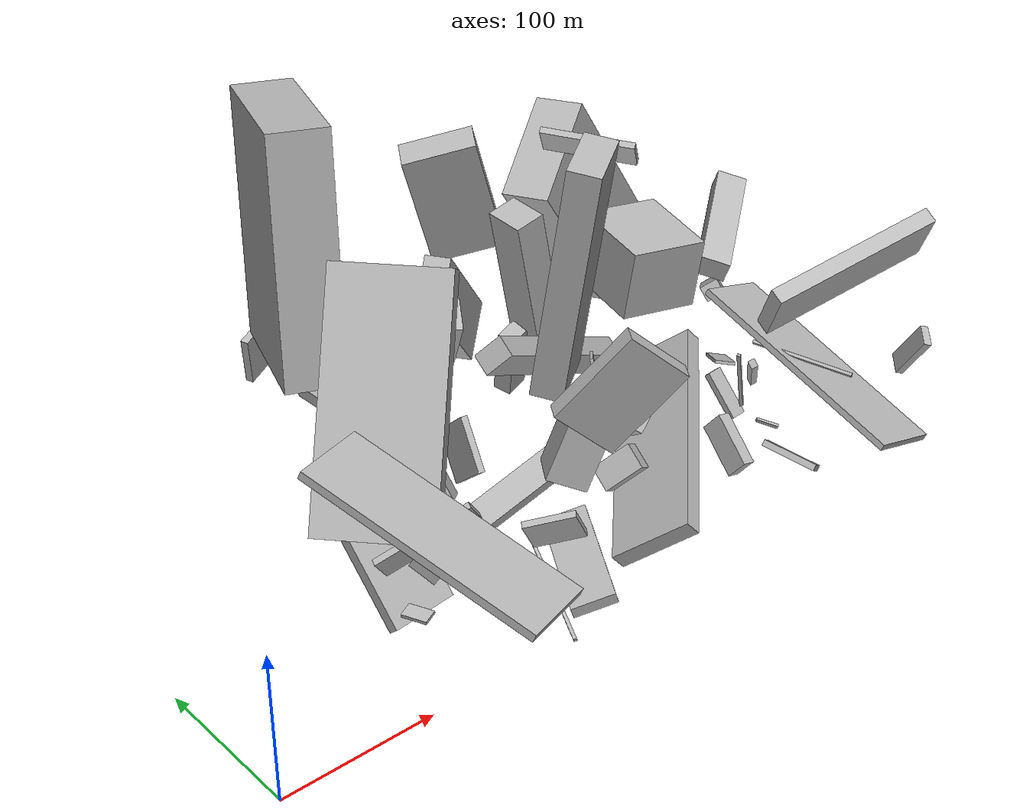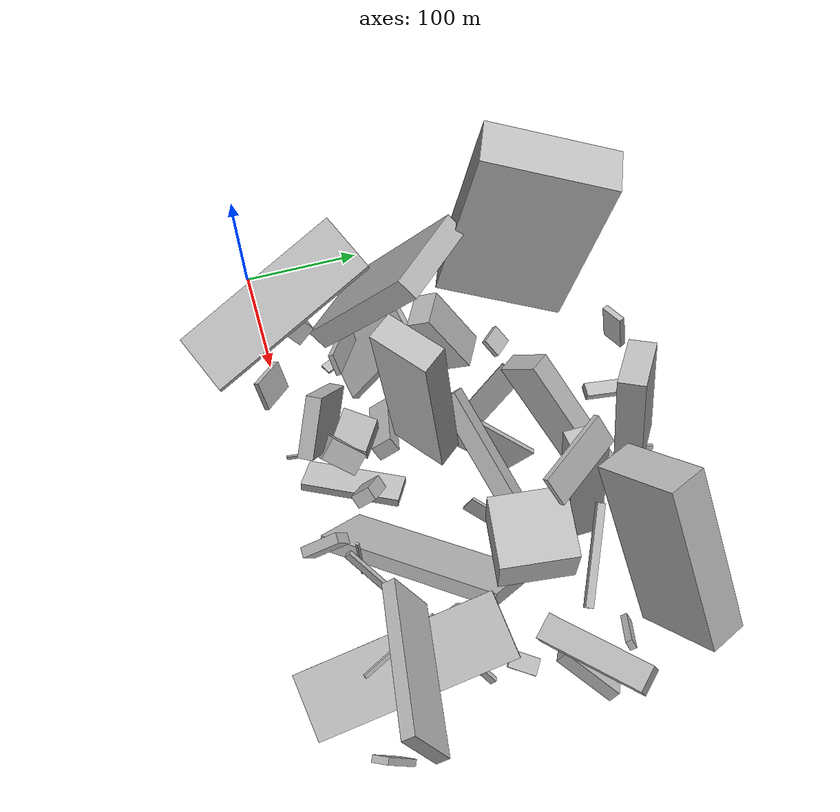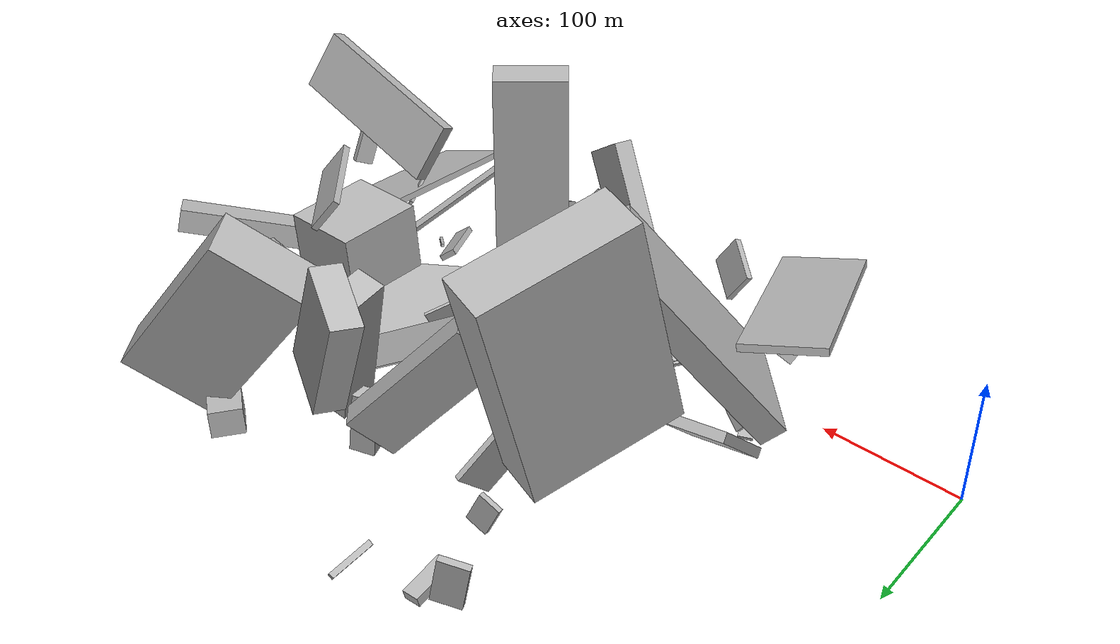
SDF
<sdf version="1.6">
 <world name="default">
  <model name="building_2">
   <static>0</static>
   <pose>440.4431010507671 38.60146053328462 60.069480428920286 -1.1927769694881696 -0.2578235203287633 1.6142492067294447</pose>
   <link name="link">
    <gravity>0</gravity>
    <pose>0 0 24.5 0 0 0</pose>
    <collision name="collision"><geometry><box><size>150 4 49</size></box></geometry></collision>
    <visual name="visual">
     <cast_shadows>0</cast_shadows>
     <geometry><box><size>150 4 49</size></box></geometry>
     <material>
      <script>
       <uri>model://HANNAS_wall/materials/scripts</uri>
       <uri>model://HANNAS_wall/materials/textures</uri>
       <name>vrc/HANNAS_wall</name>
      </script>
     </material>
    </visual>
   </link>
  </model>
  <model name="building_6">
   <static>0</static>
   <pose>388.2095057453608 76.4043435438441 40.05132889341294 1.4428762924801 -0.7577369081922626 -1.315213940994746</pose>
   <link name="link">
    <gravity>0</gravity>
    <pose>0 0 5.5 0 0 0</pose>
    <collision name="collision"><geometry><box><size>4 31 11</size></box></geometry></collision>
    <visual name="visual">
     <cast_shadows>0</cast_shadows>
     <geometry><box><size>4 31 11</size></box></geometry>
     <material>
      <script>
       <uri>model://HANNAS_wall/materials/scripts</uri>
       <uri>model://HANNAS_wall/materials/textures</uri>
       <name>vrc/HANNAS_wall</name>
      </script>
     </material>
    </visual>
   </link>
  </model>
  <model name="building_10">
   <static>0</static>
   <pose>232.27764748264298 53.23633769311051 96.22144961448575 2.7284813280096243 -1.1466738281262676 -0.2003672247697847</pose>
   <link name="link">
    <gravity>0</gravity>
    <pose>0 0 12.5 0 0 0</pose>
    <collision name="collision"><geometry><box><size>50 26 25</size></box></geometry></collision>
    <visual name="visual">
     <cast_shadows>0</cast_shadows>
     <geometry><box><size>50 26 25</size></box></geometry>
     <material>
      <script>
       <uri>model://HANNAS_wall/materials/scripts</uri>
       <uri>model://HANNAS_wall/materials/textures</uri>
       <name>vrc/HANNAS_wall</name>
      </script>
     </material>
    </visual>
   </link>
  </model>
  <model name="building_11">
   <static>0</static>
   <pose>149.7832015778629 186.83316816147635 112.1341788793621 0.20476677884110345 -0.03882666111469006 2.753556784348288</pose>
   <link name="link">
    <gravity>0</gravity>
    <pose>0 0 75.0 0 0 0</pose>
    <collision name="collision"><geometry><box><size>36 99 150</size></box></geometry></collision>
    <visual name="visual">
     <cast_shadows>0</cast_shadows>
     <geometry><box><size>36 99 150</size></box></geometry>
     <material>
      <script>
       <uri>model://HANNAS_wall/materials/scripts</uri>
       <uri>model://HANNAS_wall/materials/textures</uri>
       <name>vrc/HANNAS_wall</name>
      </script>
     </material>
    </visual>
   </link>
  </model>
  <model name="building_15">
   <static>0</static>
   <pose>219.52609646362248 64.4884611498182 48.07759273776928 -0.7598916400136252 0.8958230802810724 0.7362716197174718</pose>
   <link name="link">
    <gravity>0</gravity>
    <pose>0 0 8.5 0 0 0</pose>
    <collision name="collision"><geometry><box><size>13 59 17</size></box></geometry></collision>
    <visual name="visual">
     <cast_shadows>0</cast_shadows>
     <geometry><box><size>13 59 17</size></box></geometry>
     <material>
      <script>
       <uri>model://HANNAS_wall/materials/scripts</uri>
       <uri>model://HANNAS_wall/materials/textures</uri>
       <name>vrc/HANNAS_wall</name>
      </script>
     </material>
    </visual>
   </link>
  </model>
  <model name="building_17">
   <static>0</static>
   <pose>335.90783788194483 195.53766606975177 89.73078323857001 1.7374953841887708 -0.007283260920793814 -1.5533922045461594</pose>
   <link name="link">
    <gravity>0</gravity>
    <pose>0 0 10.0 0 0 0</pose>
    <collision name="collision"><geometry><box><size>27 102 20</size></box></geometry></collision>
    <visual name="visual">
     <cast_shadows>0</cast_shadows>
     <geometry><box><size>27 102 20</size></box></geometry>
     <material>
      <script>
       <uri>model://HANNAS_wall/materials/scripts</uri>
       <uri>model://HANNAS_wall/materials/textures</uri>
       <name>vrc/HANNAS_wall</name>
      </script>
     </material>
    </visual>
   </link>
  </model>
  <model name="building_20">
   <static>0</static>
   <pose>214.78213762172194 207.93914817287515 21.610456366089423 -2.060364451368353 -1.1821395013426674 -2.626097188958331</pose>
   <link name="link">
    <gravity>0</gravity>
    <pose>0 0 2.0 0 0 0</pose>
    <collision name="collision"><geometry><box><size>23 16 4</size></box></geometry></collision>
    <visual name="visual">
     <cast_shadows>0</cast_shadows>
     <geometry><box><size>23 16 4</size></box></geometry>
     <material>
      <script>
       <uri>model://HANNAS_wall/materials/scripts</uri>
       <uri>model://HANNAS_wall/materials/textures</uri>
       <name>vrc/HANNAS_wall</name>
      </script>
     </material>
    </visual>
   </link>
  </model>
  <model name="building_23">
   <static>0</static>
   <pose>338.70299949811437 56.00060980796596 46.621645672576314 2.2432393264583905 0.24130760410190355 -2.3062253183938997</pose>
   <link name="link">
    <gravity>0</gravity>
    <pose>0 0 27.5 0 0 0</pose>
    <collision name="collision"><geometry><box><size>150 11 55</size></box></geometry></collision>
    <visual name="visual">
     <cast_shadows>0</cast_shadows>
     <geometry><box><size>150 11 55</size></box></geometry>
     <material>
      <script>
       <uri>model://HANNAS_wall/materials/scripts</uri>
       <uri>model://HANNAS_wall/materials/textures</uri>
       <name>vrc/HANNAS_wall</name>
      </script>
     </material>
    </visual>
   </link>
  </model>
  <model name="building_27">
   <static>0</static>
   <pose>393.2907997637555 136.81611679598745 109.39895591986141 1.4267878230865503 0.03693590992971222 -1.7060419672237959</pose>
   <link name="link">
    <gravity>0</gravity>
    <pose>0 0 25.5 0 0 0</pose>
    <collision name="collision"><geometry><box><size>55 44 51</size></box></geometry></collision>
    <visual name="visual">
     <cast_shadows>0</cast_shadows>
     <geometry><box><size>55 44 51</size></box></geometry>
     <material>
      <script>
       <uri>model://HANNAS_wall/materials/scripts</uri>
       <uri>model://HANNAS_wall/materials/textures</uri>
       <name>vrc/HANNAS_wall</name>
      </script>
     </material>
    </visual>
   </link>
  </model>
  <model name="building_32">
   <static>0</static>
   <pose>400.26145545715553 237.65232030737445 28.487578933202496 0.16859323836312462 1.3529740922339082 2.580095224468473</pose>
   <link name="link">
    <gravity>0</gravity>
    <pose>0 0 13.5 0 0 0</pose>
    <collision name="collision"><geometry><box><size>18 22 27</size></box></geometry></collision>
    <visual name="visual">
     <cast_shadows>0</cast_shadows>
     <geometry><box><size>18 22 27</size></box></geometry>
     <material>
      <script>
       <uri>model://HANNAS_wall/materials/scripts</uri>
       <uri>model://HANNAS_wall/materials/textures</uri>
       <name>vrc/HANNAS_wall</name>
      </script>
     </material>
    </visual>
   </link>
  </model>
  <model name="building_33">
   <static>0</static>
   <pose>292.96228329793706 217.71010325587122 53.25038979860694 0.008983599827297436 -0.7369748713210755 0.6411146286087552</pose>
   <link name="link">
    <gravity>0</gravity>
    <pose>0 0 51.0 0 0 0</pose>
    <collision name="collision"><geometry><box><size>37 16 102</size></box></geometry></collision>
    <visual name="visual">
     <cast_shadows>0</cast_shadows>
     <geometry><box><size>37 16 102</size></box></geometry>
     <material>
      <script>
       <uri>model://HANNAS_wall/materials/scripts</uri>
       <uri>model://HANNAS_wall/materials/textures</uri>
       <name>vrc/HANNAS_wall</name>
      </script>
     </material>
    </visual>
   </link>
  </model>
  <model name="building_35">
   <static>0</static>
   <pose>112.2686175401964 64.9411013371456 72.48270909858081 -0.6241273816576757 0.0033706875729387423 -0.807209717213467</pose>
   <link name="link">
    <gravity>0</gravity>
    <pose>0 0 75.0 0 0 0</pose>
    <collision name="collision"><geometry><box><size>70 18 150</size></box></geometry></collision>
    <visual name="visual">
     <cast_shadows>0</cast_shadows>
     <geometry><box><size>70 18 150</size></box></geometry>
     <material>
      <script>
       <uri>model://HANNAS_wall/materials/scripts</uri>
       <uri>model://HANNAS_wall/materials/textures</uri>
       <name>vrc/HANNAS_wall</name>
      </script>
     </material>
    </visual>
   </link>
  </model>
  <model name="building_42">
   <static>0</static>
   <pose>230.42341458796216 130.35768904068766 43.8923229715444 -2.2987278374421627 -0.07417734554825312 -0.30571200952292893</pose>
   <link name="link">
    <gravity>0</gravity>
    <pose>0 0 33.5 0 0 0</pose>
    <collision name="collision"><geometry><box><size>4 35 67</size></box></geometry></collision>
    <visual name="visual">
     <cast_shadows>0</cast_shadows>
     <geometry><box><size>4 35 67</size></box></geometry>
     <material>
      <script>
       <uri>model://HANNAS_wall/materials/scripts</uri>
       <uri>model://HANNAS_wall/materials/textures</uri>
       <name>vrc/HANNAS_wall</name>
      </script>
     </material>
    </visual>
   </link>
  </model>
  <model name="building_50">
   <static>0</static>
   <pose>147.36741980478376 59.81347581720005 55.495108072719574 0.3999021118568432 -0.48585957737385504 -0.4306829690289839</pose>
   <link name="link">
    <gravity>0</gravity>
    <pose>0 0 9.0 0 0 0</pose>
    <collision name="collision"><geometry><box><size>62 4 18</size></box></geometry></collision>
    <visual name="visual">
     <cast_shadows>0</cast_shadows>
     <geometry><box><size>62 4 18</size></box></geometry>
     <material>
      <script>
       <uri>model://HANNAS_wall/materials/scripts</uri>
       <uri>model://HANNAS_wall/materials/textures</uri>
       <name>vrc/HANNAS_wall</name>
      </script>
     </material>
    </visual>
   </link>
  </model>
  <model name="building_53">
   <static>0</static>
   <pose>119.15319104596935 12.087437967617419 109.7444140205364 2.804063841022327 -0.17099700770774534 -2.741890085100967</pose>
   <link name="link">
    <gravity>0</gravity>
    <pose>0 0 2.5 0 0 0</pose>
    <collision name="collision"><geometry><box><size>54 150 5</size></box></geometry></collision>
    <visual name="visual">
     <cast_shadows>0</cast_shadows>
     <geometry><box><size>54 150 5</size></box></geometry>
     <material>
      <script>
       <uri>model://HANNAS_wall/materials/scripts</uri>
       <uri>model://HANNAS_wall/materials/textures</uri>
       <name>vrc/HANNAS_wall</name>
      </script>
     </material>
    </visual>
   </link>
  </model>
  <model name="building_56">
   <static>0</static>
   <pose>454.8205987065605 156.78967503327752 50.286898812820226 -2.114834314322306 0.5135524632722089 0.7997832129876119</pose>
   <link name="link">
    <gravity>0</gravity>
    <pose>0 0 6.0 0 0 0</pose>
    <collision name="collision"><geometry><box><size>50 10 12</size></box></geometry></collision>
    <visual name="visual">
     <cast_shadows>0</cast_shadows>
     <geometry><box><size>50 10 12</size></box></geometry>
     <material>
      <script>
       <uri>model://HANNAS_wall/materials/scripts</uri>
       <uri>model://HANNAS_wall/materials/textures</uri>
       <name>vrc/HANNAS_wall</name>
      </script>
     </material>
    </visual>
   </link>
  </model>
  <model name="building_57">
   <static>0</static>
   <pose>384.8890876074014 57.409848870631635 64.11142408939575 -1.051124912255587 -0.6777494202724536 -2.364935798271082</pose>
   <link name="link">
    <gravity>0</gravity>
    <pose>0 0 2.0 0 0 0</pose>
    <collision name="collision"><geometry><box><size>150 5 4</size></box></geometry></collision>
    <visual name="visual">
     <cast_shadows>0</cast_shadows>
     <geometry><box><size>150 5 4</size></box></geometry>
     <material>
      <script>
       <uri>model://HANNAS_wall/materials/scripts</uri>
       <uri>model://HANNAS_wall/materials/textures</uri>
       <name>vrc/HANNAS_wall</name>
      </script>
     </material>
    </visual>
   </link>
  </model>
  <model name="building_59">
   <static>0</static>
   <pose>205.85916520745792 139.68543692775262 110.24071257009987 0.5380549044851266 0.06843022006816475 -0.499856518970077</pose>
   <link name="link">
    <gravity>0</gravity>
    <pose>0 0 29.5 0 0 0</pose>
    <collision name="collision"><geometry><box><size>26 19 59</size></box></geometry></collision>
    <visual name="visual">
     <cast_shadows>0</cast_shadows>
     <geometry><box><size>26 19 59</size></box></geometry>
     <material>
      <script>
       <uri>model://HANNAS_wall/materials/scripts</uri>
       <uri>model://HANNAS_wall/materials/textures</uri>
       <name>vrc/HANNAS_wall</name>
      </script>
     </material>
    </visual>
   </link>
  </model>
  <model name="building_60">
   <static>0</static>
   <pose>422.60199134510117 247.8254572805242 117.26046171285311 -2.9791046809430637 -0.9846141283080626 -2.839012457712861</pose>
   <link name="link">
    <gravity>0</gravity>
    <pose>0 0 34.5 0 0 0</pose>
    <collision name="collision"><geometry><box><size>138 31 69</size></box></geometry></collision>
    <visual name="visual">
     <cast_shadows>0</cast_shadows>
     <geometry><box><size>138 31 69</size></box></geometry>
     <material>
      <script>
       <uri>model://HANNAS_wall/materials/scripts</uri>
       <uri>model://HANNAS_wall/materials/textures</uri>
       <name>vrc/HANNAS_wall</name>
      </script>
     </material>
    </visual>
   </link>
  </model>
  <model name="building_62">
   <static>0</static>
   <pose>385.60173023496156 44.62621321823149 114.96842879338142 1.3669479698038027 -0.5077775623948353 1.5232531471958661</pose>
   <link name="link">
    <gravity>0</gravity>
    <pose>0 0 56.5 0 0 0</pose>
    <collision name="collision"><geometry><box><size>10 41 113</size></box></geometry></collision>
    <visual name="visual">
     <cast_shadows>0</cast_shadows>
     <geometry><box><size>10 41 113</size></box></geometry>
     <material>
      <script>
       <uri>model://HANNAS_wall/materials/scripts</uri>
       <uri>model://HANNAS_wall/materials/textures</uri>
       <name>vrc/HANNAS_wall</name>
      </script>
     </material>
    </visual>
   </link>
  </model>
  <model name="building_64">
   <static>0</static>
   <pose>263.1333483709451 255.94232847382736 5.844144878525622 1.9144909148331142 -1.0140866353955427 2.6965192370859903</pose>
   <link name="link">
    <gravity>0</gravity>
    <pose>0 0 16.0 0 0 0</pose>
    <collision name="collision"><geometry><box><size>4 4 32</size></box></geometry></collision>
    <visual name="visual">
     <cast_shadows>0</cast_shadows>
     <geometry><box><size>4 4 32</size></box></geometry>
     <material>
      <script>
       <uri>model://HANNAS_wall/materials/scripts</uri>
       <uri>model://HANNAS_wall/materials/textures</uri>
       <name>vrc/HANNAS_wall</name>
      </script>
     </material>
    </visual>
   </link>
  </model>
  <model name="building_65">
   <static>0</static>
   <pose>293.87172764833633 145.98277285158906 64.34937427879476 -0.6664229136004113 -0.536146079208875 -2.7997450016810332</pose>
   <link name="link">
    <gravity>0</gravity>
    <pose>0 0 10.0 0 0 0</pose>
    <collision name="collision"><geometry><box><size>150 14 20</size></box></geometry></collision>
    <visual name="visual">
     <cast_shadows>0</cast_shadows>
     <geometry><box><size>150 14 20</size></box></geometry>
     <material>
      <script>
       <uri>model://HANNAS_wall/materials/scripts</uri>
       <uri>model://HANNAS_wall/materials/textures</uri>
       <name>vrc/HANNAS_wall</name>
      </script>
     </material>
    </visual>
   </link>
  </model>
  <model name="building_69">
   <static>0</static>
   <pose>263.7569092771307 94.57036255629922 96.50592661024696 -0.015703047169242316 0.14066917149030023 -0.9286308215449588</pose>
   <link name="link">
    <gravity>0</gravity>
    <pose>0 0 75.0 0 0 0</pose>
    <collision name="collision"><geometry><box><size>20 44 150</size></box></geometry></collision>
    <visual name="visual">
     <cast_shadows>0</cast_shadows>
     <geometry><box><size>20 44 150</size></box></geometry>
     <material>
      <script>
       <uri>model://HANNAS_wall/materials/scripts</uri>
       <uri>model://HANNAS_wall/materials/textures</uri>
       <name>vrc/HANNAS_wall</name>
      </script>
     </material>
    </visual>
   </link>
  </model>
  <model name="building_76">
   <static>0</static>
   <pose>393.7023646516777 179.8625138859386 110.1623400427502 -0.83708820509078 1.059804373093626 -2.772674386331315</pose>
   <link name="link">
    <gravity>0</gravity>
    <pose>0 0 3.0 0 0 0</pose>
    <collision name="collision"><geometry><box><size>4 72 6</size></box></geometry></collision>
    <visual name="visual">
     <cast_shadows>0</cast_shadows>
     <geometry><box><size>4 72 6</size></box></geometry>
     <material>
      <script>
       <uri>model://HANNAS_wall/materials/scripts</uri>
       <uri>model://HANNAS_wall/materials/textures</uri>
       <name>vrc/HANNAS_wall</name>
      </script>
     </material>
    </visual>
   </link>
  </model>
  <model name="building_89">
   <static>0</static>
   <pose>318.09825609515946 -0.8365154793356462 81.18366856937976 -2.532819361938581 0.2611306641105282 0.020881925029455614</pose>
   <link name="link">
    <gravity>0</gravity>
    <pose>0 0 7.5 0 0 0</pose>
    <collision name="collision"><geometry><box><size>8 32 15</size></box></geometry></collision>
    <visual name="visual">
     <cast_shadows>0</cast_shadows>
     <geometry><box><size>8 32 15</size></box></geometry>
     <material>
      <script>
       <uri>model://HANNAS_wall/materials/scripts</uri>
       <uri>model://HANNAS_wall/materials/textures</uri>
       <name>vrc/HANNAS_wall</name>
      </script>
     </material>
    </visual>
   </link>
  </model>
  <model name="building_91">
   <static>0</static>
   <pose>269.6036988894406 39.12566446095643 101.17494060642072 0.7962811982895113 0.4915418667445489 -0.8730459777155137</pose>
   <link name="link">
    <gravity>0</gravity>
    <pose>0 0 14.5 0 0 0</pose>
    <collision name="collision"><geometry><box><size>17 23 29</size></box></geometry></collision>
    <visual name="visual">
     <cast_shadows>0</cast_shadows>
     <geometry><box><size>17 23 29</size></box></geometry>
     <material>
      <script>
       <uri>model://HANNAS_wall/materials/scripts</uri>
       <uri>model://HANNAS_wall/materials/textures</uri>
       <name>vrc/HANNAS_wall</name>
      </script>
     </material>
    </visual>
   </link>
  </model>
  <model name="building_96">
   <static>0</static>
   <pose>268.2066328070524 44.32371262130764 58.51478473303452 -2.3495769864342835 -0.665863051837397 -0.6133153211578799</pose>
   <link name="link">
    <gravity>0</gravity>
    <pose>0 0 5.5 0 0 0</pose>
    <collision name="collision"><geometry><box><size>26 16 11</size></box></geometry></collision>
    <visual name="visual">
     <cast_shadows>0</cast_shadows>
     <geometry><box><size>26 16 11</size></box></geometry>
     <material>
      <script>
       <uri>model://HANNAS_wall/materials/scripts</uri>
       <uri>model://HANNAS_wall/materials/textures</uri>
       <name>vrc/HANNAS_wall</name>
      </script>
     </material>
    </visual>
   </link>
  </model>
  <model name="building_97">
   <static>0</static>
   <pose>460.3729987830667 151.36725173170763 91.32798502861634 -0.625117702357057 1.2007398317192457 1.6699914536899425</pose>
   <link name="link">
    <gravity>0</gravity>
    <pose>0 0 9.5 0 0 0</pose>
    <collision name="collision"><geometry><box><size>15 80 19</size></box></geometry></collision>
    <visual name="visual">
     <cast_shadows>0</cast_shadows>
     <geometry><box><size>15 80 19</size></box></geometry>
     <material>
      <script>
       <uri>model://HANNAS_wall/materials/scripts</uri>
       <uri>model://HANNAS_wall/materials/textures</uri>
       <name>vrc/HANNAS_wall</name>
      </script>
     </material>
    </visual>
   </link>
  </model>
  <model name="building_99">
   <static>0</static>
   <pose>479.08160305404243 10.096505373010725 64.7377237440991 -1.2264420538386724 -0.4486740183041865 0.9863668023642533</pose>
   <link name="link">
    <gravity>0</gravity>
    <pose>0 0 2.5 0 0 0</pose>
    <collision name="collision"><geometry><box><size>13 35 5</size></box></geometry></collision>
    <visual name="visual">
     <cast_shadows>0</cast_shadows>
     <geometry><box><size>13 35 5</size></box></geometry>
     <material>
      <script>
       <uri>model://HANNAS_wall/materials/scripts</uri>
       <uri>model://HANNAS_wall/materials/textures</uri>
       <name>vrc/HANNAS_wall</name>
      </script>
     </material>
    </visual>
   </link>
  </model>
  <model name="building_100">
   <static>0</static>
   <pose>169.39780702232645 4.2995775203850926 85.42627203902654 1.2667503811803391 -0.4078159933548227 0.9794023340896567</pose>
   <link name="link">
    <gravity>0</gravity>
    <pose>0 0 15.0 0 0 0</pose>
    <collision name="collision"><geometry><box><size>4 24 30</size></box></geometry></collision>
    <visual name="visual">
     <cast_shadows>0</cast_shadows>
     <geometry><box><size>4 24 30</size></box></geometry>
     <material>
      <script>
       <uri>model://HANNAS_wall/materials/scripts</uri>
       <uri>model://HANNAS_wall/materials/textures</uri>
       <name>vrc/HANNAS_wall</name>
      </script>
     </material>
    </visual>
   </link>
  </model>
  <model name="building_104">
   <static>0</static>
   <pose>431.7653372242678 198.8731163232206 42.37151160364757 0.685349306661147 0.4522214527340141 -1.5542731787702517</pose>
   <link name="link">
    <gravity>0</gravity>
    <pose>0 0 4.0 0 0 0</pose>
    <collision name="collision"><geometry><box><size>5 34 8</size></box></geometry></collision>
    <visual name="visual">
     <cast_shadows>0</cast_shadows>
     <geometry><box><size>5 34 8</size></box></geometry>
     <material>
      <script>
       <uri>model://HANNAS_wall/materials/scripts</uri>
       <uri>model://HANNAS_wall/materials/textures</uri>
       <name>vrc/HANNAS_wall</name>
      </script>
     </material>
    </visual>
   </link>
  </model>
  <model name="building_105">
   <static>0</static>
   <pose>248.1676297716389 34.11838041688341 12.911599897682677 -1.8505029824724701 -0.025011478851236 1.0841771657534918</pose>
   <link name="link">
    <gravity>0</gravity>
    <pose>0 0 13.5 0 0 0</pose>
    <collision name="collision"><geometry><box><size>80 7 27</size></box></geometry></collision>
    <visual name="visual">
     <cast_shadows>0</cast_shadows>
     <geometry><box><size>80 7 27</size></box></geometry>
     <material>
      <script>
       <uri>model://HANNAS_wall/materials/scripts</uri>
       <uri>model://HANNAS_wall/materials/textures</uri>
       <name>vrc/HANNAS_wall</name>
      </script>
     </material>
    </visual>
   </link>
  </model>
  <model name="building_106">
   <static>0</static>
   <pose>306.7503436153184 195.95934569970905 31.950925874710105 -1.1951874226623524 -1.4317276214064483 -1.633268761240763</pose>
   <link name="link">
    <gravity>0</gravity>
    <pose>0 0 8.5 0 0 0</pose>
    <collision name="collision"><geometry><box><size>43 12 17</size></box></geometry></collision>
    <visual name="visual">
     <cast_shadows>0</cast_shadows>
     <geometry><box><size>43 12 17</size></box></geometry>
     <material>
      <script>
       <uri>model://HANNAS_wall/materials/scripts</uri>
       <uri>model://HANNAS_wall/materials/textures</uri>
       <name>vrc/HANNAS_wall</name>
      </script>
     </material>
    </visual>
   </link>
  </model>
  <model name="building_107">
   <static>0</static>
   <pose>406.5966226838474 34.97477578101019 78.97818169699126 -2.982462130349733 0.8644254817178405 0.5667136837812581</pose>
   <link name="link">
    <gravity>0</gravity>
    <pose>0 0 1.0 0 0 0</pose>
    <collision name="collision"><geometry><box><size>3 63 2</size></box></geometry></collision>
    <visual name="visual">
     <cast_shadows>0</cast_shadows>
     <geometry><box><size>3 63 2</size></box></geometry>
     <material>
      <script>
       <uri>model://HANNAS_wall/materials/scripts</uri>
       <uri>model://HANNAS_wall/materials/textures</uri>
       <name>vrc/HANNAS_wall</name>
      </script>
     </material>
    </visual>
   </link>
  </model>
  <model name="building_108">
   <static>0</static>
   <pose>219.12103256882912 162.5533678682289 37.19120072372773 -0.8124456907627675 -0.9017200628442334 1.7226378253115575</pose>
   <link name="link">
    <gravity>0</gravity>
    <pose>0 0 10.0 0 0 0</pose>
    <collision name="collision"><geometry><box><size>80 2 20</size></box></geometry></collision>
    <visual name="visual">
     <cast_shadows>0</cast_shadows>
     <geometry><box><size>80 2 20</size></box></geometry>
     <material>
      <script>
       <uri>model://HANNAS_wall/materials/scripts</uri>
       <uri>model://HANNAS_wall/materials/textures</uri>
       <name>vrc/HANNAS_wall</name>
      </script>
     </material>
    </visual>
   </link>
  </model>
  <model name="building_109">
   <static>0</static>
   <pose>205.66115298038935 30.817549696319727 15.318313980843039 -1.2882263516845929 0.3199018150084398 -1.8857643686955425</pose>
   <link name="link">
    <gravity>0</gravity>
    <pose>0 0 1.0 0 0 0</pose>
    <collision name="collision"><geometry><box><size>80 3 2</size></box></geometry></collision>
    <visual name="visual">
     <cast_shadows>0</cast_shadows>
     <geometry><box><size>80 3 2</size></box></geometry>
     <material>
      <script>
       <uri>model://HANNAS_wall/materials/scripts</uri>
       <uri>model://HANNAS_wall/materials/textures</uri>
       <name>vrc/HANNAS_wall</name>
      </script>
     </material>
    </visual>
   </link>
  </model>
  <model name="building_112">
   <static>0</static>
   <pose>345.86690371993615 24.07003049966268 77.90251134081844 -0.055575214295351075 -0.11701990945882844 0.5715572005196085</pose>
   <link name="link">
    <gravity>0</gravity>
    <pose>0 0 19.0 0 0 0</pose>
    <collision name="collision"><geometry><box><size>2 2 38</size></box></geometry></collision>
    <visual name="visual">
     <cast_shadows>0</cast_shadows>
     <geometry><box><size>2 2 38</size></box></geometry>
     <material>
      <script>
       <uri>model://HANNAS_wall/materials/scripts</uri>
       <uri>model://HANNAS_wall/materials/textures</uri>
       <name>vrc/HANNAS_wall</name>
      </script>
     </material>
    </visual>
   </link>
  </model>
  <model name="building_115">
   <static>0</static>
   <pose>283.0585943916421 250.23028813219022 133.08863931573833 -1.3459180377876365 0.1367749963401315 -2.115766553300287</pose>
   <link name="link">
    <gravity>0</gravity>
    <pose>0 0 23.0 0 0 0</pose>
    <collision name="collision"><geometry><box><size>20 80 46</size></box></geometry></collision>
    <visual name="visual">
     <cast_shadows>0</cast_shadows>
     <geometry><box><size>20 80 46</size></box></geometry>
     <material>
      <script>
       <uri>model://HANNAS_wall/materials/scripts</uri>
       <uri>model://HANNAS_wall/materials/textures</uri>
       <name>vrc/HANNAS_wall</name>
      </script>
     </material>
    </visual>
   </link>
  </model>
  <model name="building_117">
   <static>0</static>
   <pose>338.1891375451844 195.4222583121283 183.4807156556683 -1.6428253257724876 0.6324810984357436 -2.5509288572291338</pose>
   <link name="link">
    <gravity>0</gravity>
    <pose>0 0 29.0 0 0 0</pose>
    <collision name="collision"><geometry><box><size>4 24 58</size></box></geometry></collision>
    <visual name="visual">
     <cast_shadows>0</cast_shadows>
     <geometry><box><size>4 24 58</size></box></geometry>
     <material>
      <script>
       <uri>model://HANNAS_wall/materials/scripts</uri>
       <uri>model://HANNAS_wall/materials/textures</uri>
       <name>vrc/HANNAS_wall</name>
      </script>
     </material>
    </visual>
   </link>
  </model>
  <model name="building_118">
   <static>0</static>
   <pose>316.852208362648 123.94345330521583 73.00258083134595 -2.998379827153067 -0.38412108454996263 -2.268984937687868</pose>
   <link name="link">
    <gravity>0</gravity>
    <pose>0 0 8.5 0 0 0</pose>
    <collision name="collision"><geometry><box><size>21 2 17</size></box></geometry></collision>
    <visual name="visual">
     <cast_shadows>0</cast_shadows>
     <geometry><box><size>21 2 17</size></box></geometry>
     <material>
      <script>
       <uri>model://HANNAS_wall/materials/scripts</uri>
       <uri>model://HANNAS_wall/materials/textures</uri>
       <name>vrc/HANNAS_wall</name>
      </script>
     </material>
    </visual>
   </link>
  </model>
  <model name="building_122">
   <static>0</static>
   <pose>428.15106591891305 131.0932538594038 19.603699531092772 0.5394423565992157 -1.1243523979030536 0.5114775416652779</pose>
   <link name="link">
    <gravity>0</gravity>
    <pose>0 0 11.5 0 0 0</pose>
    <collision name="collision"><geometry><box><size>2 13 23</size></box></geometry></collision>
    <visual name="visual">
     <cast_shadows>0</cast_shadows>
     <geometry><box><size>2 13 23</size></box></geometry>
     <material>
      <script>
       <uri>model://HANNAS_wall/materials/scripts</uri>
       <uri>model://HANNAS_wall/materials/textures</uri>
       <name>vrc/HANNAS_wall</name>
      </script>
     </material>
    </visual>
   </link>
  </model>
  <model name="building_125">
   <static>0</static>
   <pose>218.1913112942865 159.72620351582896 132.62681774166214 -0.6886250750187994 -0.09817345051299087 -0.7909827624568367</pose>
   <link name="link">
    <gravity>0</gravity>
    <pose>0 0 2.0 0 0 0</pose>
    <collision name="collision"><geometry><box><size>17 15 4</size></box></geometry></collision>
    <visual name="visual">
     <cast_shadows>0</cast_shadows>
     <geometry><box><size>17 15 4</size></box></geometry>
     <material>
      <script>
       <uri>model://HANNAS_wall/materials/scripts</uri>
       <uri>model://HANNAS_wall/materials/textures</uri>
       <name>vrc/HANNAS_wall</name>
      </script>
     </material>
    </visual>
   </link>
  </model>
  <model name="building_128">
   <static>0</static>
   <pose>390.4194008468328 36.28610873772872 34.21909186693811 -0.4601436540608222 1.193201058047437 1.8812372778668398</pose>
   <link name="link">
    <gravity>0</gravity>
    <pose>0 0 7.0 0 0 0</pose>
    <collision name="collision"><geometry><box><size>2 2 14</size></box></geometry></collision>
    <visual name="visual">
     <cast_shadows>0</cast_shadows>
     <geometry><box><size>2 2 14</size></box></geometry>
     <material>
      <script>
       <uri>model://HANNAS_wall/materials/scripts</uri>
       <uri>model://HANNAS_wall/materials/textures</uri>
       <name>vrc/HANNAS_wall</name>
      </script>
     </material>
    </visual>
   </link>
  </model>
  <model name="building_132">
   <static>0</static>
   <pose>211.95240598272744 277.55256586769 12.543713581564166 -1.423971109300054 -0.12189623466167004 3.0810958230677628</pose>
   <link name="link">
    <gravity>0</gravity>
    <pose>0 0 15.5 0 0 0</pose>
    <collision name="collision"><geometry><box><size>12 7 31</size></box></geometry></collision>
    <visual name="visual">
     <cast_shadows>0</cast_shadows>
     <geometry><box><size>12 7 31</size></box></geometry>
     <material>
      <script>
       <uri>model://HANNAS_wall/materials/scripts</uri>
       <uri>model://HANNAS_wall/materials/textures</uri>
       <name>vrc/HANNAS_wall</name>
      </script>
     </material>
    </visual>
   </link>
  </model>
  <model name="building_137">
   <static>0</static>
   <pose>169.33320207051048 276.1720693535112 52.91603719698011 1.4226300039941677 -0.06190222176642095 1.9683995628196003</pose>
   <link name="link">
    <gravity>0</gravity>
    <pose>0 0 10.0 0 0 0</pose>
    <collision name="collision"><geometry><box><size>5 33 20</size></box></geometry></collision>
    <visual name="visual">
     <cast_shadows>0</cast_shadows>
     <geometry><box><size>5 33 20</size></box></geometry>
     <material>
      <script>
       <uri>model://HANNAS_wall/materials/scripts</uri>
       <uri>model://HANNAS_wall/materials/textures</uri>
       <name>vrc/HANNAS_wall</name>
      </script>
     </material>
    </visual>
   </link>
  </model>
  <model name="building_140">
   <static>0</static>
   <pose>246.56123961321353 16.89912657974299 133.20789778268508 1.5483551315399642 -0.734663228745248 2.6458105950217803</pose>
   <link name="link">
    <gravity>0</gravity>
    <pose>0 0 5.5 0 0 0</pose>
    <collision name="collision"><geometry><box><size>44 63 11</size></box></geometry></collision>
    <visual name="visual">
     <cast_shadows>0</cast_shadows>
     <geometry><box><size>44 63 11</size></box></geometry>
     <material>
      <script>
       <uri>model://HANNAS_wall/materials/scripts</uri>
       <uri>model://HANNAS_wall/materials/textures</uri>
       <name>vrc/HANNAS_wall</name>
      </script>
     </material>
    </visual>
   </link>
  </model>
  <model name="building_141">
   <static>0</static>
   <pose>128.14859875396527 50.34942076658463 21.12652218431137 -0.01440877000112681 -0.04860653047305553 0.43119444958341246</pose>
   <link name="link">
    <gravity>0</gravity>
    <pose>0 0 1.0 0 0 0</pose>
    <collision name="collision"><geometry><box><size>10 16 2</size></box></geometry></collision>
    <visual name="visual">
     <cast_shadows>0</cast_shadows>
     <geometry><box><size>10 16 2</size></box></geometry>
     <material>
      <script>
       <uri>model://HANNAS_wall/materials/scripts</uri>
       <uri>model://HANNAS_wall/materials/textures</uri>
       <name>vrc/HANNAS_wall</name>
      </script>
     </material>
    </visual>
   </link>
  </model>
  <model name="building_143">
   <static>0</static>
   <pose>134.13302354818487 87.54994924956037 39.564371301858095 0.08522090085961807 -0.8476599649163392 1.652044555810742</pose>
   <link name="link">
    <gravity>0</gravity>
    <pose>0 0 3.5 0 0 0</pose>
    <collision name="collision"><geometry><box><size>80 45 7</size></box></geometry></collision>
    <visual name="visual">
     <cast_shadows>0</cast_shadows>
     <geometry><box><size>80 45 7</size></box></geometry>
     <material>
      <script>
       <uri>model://HANNAS_wall/materials/scripts</uri>
       <uri>model://HANNAS_wall/materials/textures</uri>
       <name>vrc/HANNAS_wall</name>
      </script>
     </material>
    </visual>
   </link>
  </model>
  <model name="building_144">
   <static>0</static>
   <pose>352.86240753697643 162.91341596459688 91.70369663519172 0.4432871188756917 0.43376528734960995 0.5692917938142814</pose>
   <link name="link">
    <gravity>0</gravity>
    <pose>0 0 12.0 0 0 0</pose>
    <collision name="collision"><geometry><box><size>12 2 24</size></box></geometry></collision>
    <visual name="visual">
     <cast_shadows>0</cast_shadows>
     <geometry><box><size>12 2 24</size></box></geometry>
     <material>
      <script>
       <uri>model://HANNAS_wall/materials/scripts</uri>
       <uri>model://HANNAS_wall/materials/textures</uri>
       <name>vrc/HANNAS_wall</name>
      </script>
     </material>
    </visual>
   </link>
  </model>
  <model name="building_146">
   <static>0</static>
   <pose>127.0205104034186 15.297285068160544 82.80983272866503 -0.9926961294399964 -0.46239926368479817 0.1754297864105752</pose>
   <link name="link">
    <gravity>0</gravity>
    <pose>0 0 8.5 0 0 0</pose>
    <collision name="collision"><geometry><box><size>27 25 17</size></box></geometry></collision>
    <visual name="visual">
     <cast_shadows>0</cast_shadows>
     <geometry><box><size>27 25 17</size></box></geometry>
     <material>
      <script>
       <uri>model://HANNAS_wall/materials/scripts</uri>
       <uri>model://HANNAS_wall/materials/textures</uri>
       <name>vrc/HANNAS_wall</name>
      </script>
     </material>
    </visual>
   </link>
  </model>
  <model name="building_147">
   <static>0</static>
   <pose>387.4046399337396 22.28725476272507 19.69483213843842 -0.6732026436576575 0.1817848795664347 -1.216441801905582</pose>
   <link name="link">
    <gravity>0</gravity>
    <pose>0 0 2.0 0 0 0</pose>
    <collision name="collision"><geometry><box><size>35 12 4</size></box></geometry></collision>
    <visual name="visual">
     <cast_shadows>0</cast_shadows>
     <geometry><box><size>35 12 4</size></box></geometry>
     <material>
      <script>
       <uri>model://HANNAS_wall/materials/scripts</uri>
       <uri>model://HANNAS_wall/materials/textures</uri>
       <name>vrc/HANNAS_wall</name>
      </script>
     </material>
    </visual>
   </link>
  </model>
 </world>
</sdf>
